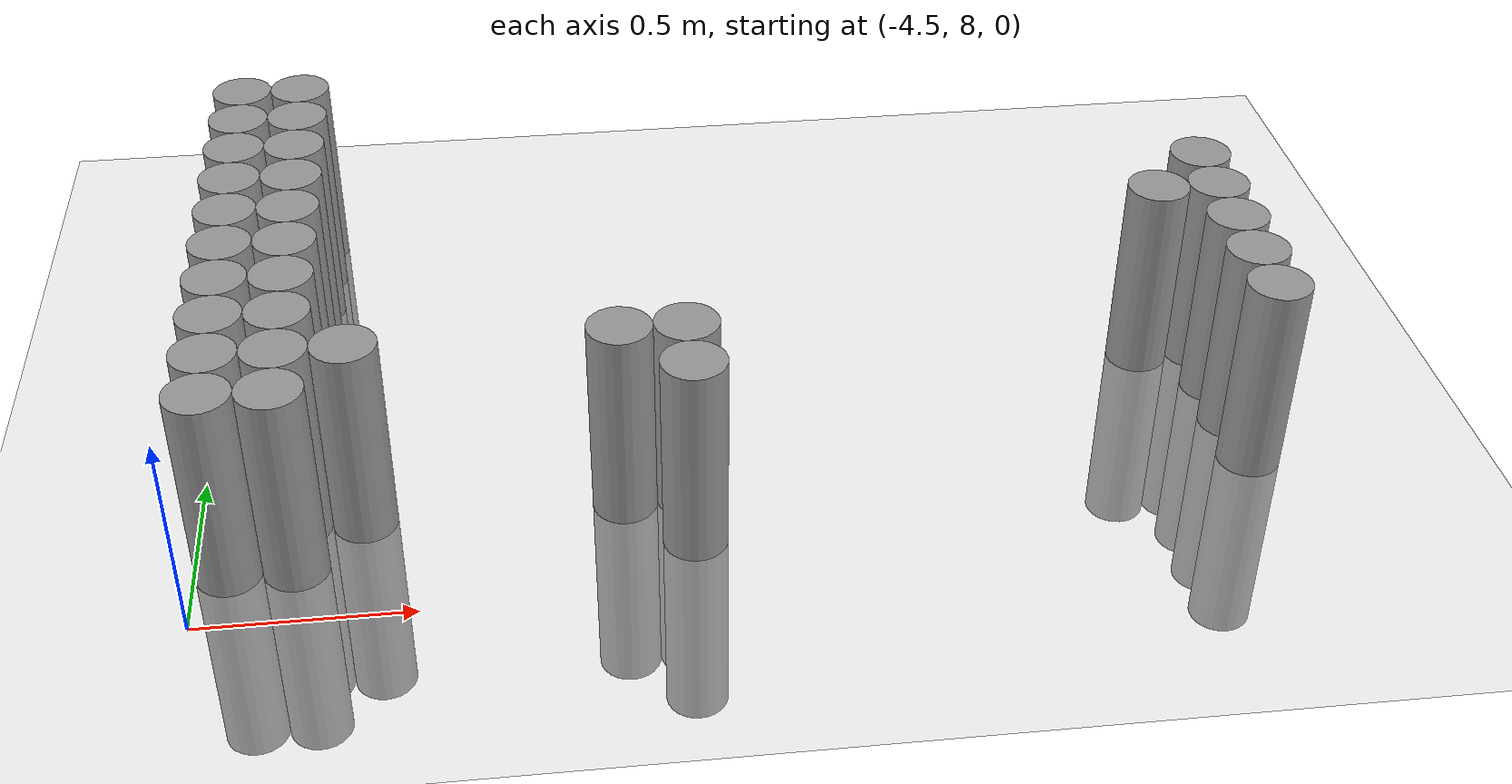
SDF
<sdf version="1.6">
 <world name="default">
  <model name="ground_plane">
   <static>1</static>
   <static>1</static>
   <link name="link">
    <collision name="collision">
     <geometry><plane><normal>0 0 1</normal><size>100 100</size></plane></geometry>
     <surface><friction><ode><mu>100</mu><mu2>50</mu2></ode></friction></surface>
    </collision>
    <visual name="visual">
     <cast_shadows>0</cast_shadows>
     <geometry><plane><normal>0 0 1</normal><size>100 100</size></plane></geometry>
     <material>
      <script><uri>file://media/materials/scripts/gazebo.material</uri><name>Gazebo/Grey</name></script>
     </material>
    </visual>
   </link>
  </model>
  <model name="unit_cylinder_116">
   <static>1</static>
   <pose>-4.425000 8.175000 0.000000 0.000000 0.000000 0.000000</pose>
   <link name="link">
    <inertial>
     <mass>1</mass>
     <inertia><ixx>0.145833</ixx><ixy>0</ixy><ixz>0</ixz><iyy>0.145833</iyy><iyz>0</iyz><izz>0.125</izz></inertia>
    </inertial>
    <collision name="collision">
     <geometry><cylinder><radius>0.075000</radius><length>1</length></cylinder></geometry>
    </collision>
    <visual name="visual">
     <geometry><cylinder><radius>0.075000</radius><length>1</length></cylinder></geometry>
     <material>
      <script><name>Gazebo/Grey</name><uri>file://media/materials/scripts/gazebo.material</uri></script>
     </material>
    </visual>
   </link>
  </model>
  <model name="unit_cylinder_117">
   <static>1</static>
   <pose>-4.425000 8.325000 0.000000 0.000000 0.000000 0.000000</pose>
   <link name="link">
    <inertial>
     <mass>1</mass>
     <inertia><ixx>0.145833</ixx><ixy>0</ixy><ixz>0</ixz><iyy>0.145833</iyy><iyz>0</iyz><izz>0.125</izz></inertia>
    </inertial>
    <collision name="collision">
     <geometry><cylinder><radius>0.075000</radius><length>1</length></cylinder></geometry>
    </collision>
    <visual name="visual">
     <geometry><cylinder><radius>0.075000</radius><length>1</length></cylinder></geometry>
     <material>
      <script><name>Gazebo/Grey</name><uri>file://media/materials/scripts/gazebo.material</uri></script>
     </material>
    </visual>
   </link>
  </model>
  <model name="unit_cylinder_118">
   <static>1</static>
   <pose>-4.425000 8.475000 0.000000 0.000000 0.000000 0.000000</pose>
   <link name="link">
    <inertial>
     <mass>1</mass>
     <inertia><ixx>0.145833</ixx><ixy>0</ixy><ixz>0</ixz><iyy>0.145833</iyy><iyz>0</iyz><izz>0.125</izz></inertia>
    </inertial>
    <collision name="collision">
     <geometry><cylinder><radius>0.075000</radius><length>1</length></cylinder></geometry>
    </collision>
    <visual name="visual">
     <geometry><cylinder><radius>0.075000</radius><length>1</length></cylinder></geometry>
     <material>
      <script><name>Gazebo/Grey</name><uri>file://media/materials/scripts/gazebo.material</uri></script>
     </material>
    </visual>
   </link>
  </model>
  <model name="unit_cylinder_119">
   <static>1</static>
   <pose>-4.425000 8.625000 0.000000 0.000000 0.000000 0.000000</pose>
   <link name="link">
    <inertial>
     <mass>1</mass>
     <inertia><ixx>0.145833</ixx><ixy>0</ixy><ixz>0</ixz><iyy>0.145833</iyy><iyz>0</iyz><izz>0.125</izz></inertia>
    </inertial>
    <collision name="collision">
     <geometry><cylinder><radius>0.075000</radius><length>1</length></cylinder></geometry>
    </collision>
    <visual name="visual">
     <geometry><cylinder><radius>0.075000</radius><length>1</length></cylinder></geometry>
     <material>
      <script><name>Gazebo/Grey</name><uri>file://media/materials/scripts/gazebo.material</uri></script>
     </material>
    </visual>
   </link>
  </model>
  <model name="unit_cylinder_120">
   <static>1</static>
   <pose>-4.425000 8.775000 0.000000 0.000000 0.000000 0.000000</pose>
   <link name="link">
    <inertial>
     <mass>1</mass>
     <inertia><ixx>0.145833</ixx><ixy>0</ixy><ixz>0</ixz><iyy>0.145833</iyy><iyz>0</iyz><izz>0.125</izz></inertia>
    </inertial>
    <collision name="collision">
     <geometry><cylinder><radius>0.075000</radius><length>1</length></cylinder></geometry>
    </collision>
    <visual name="visual">
     <geometry><cylinder><radius>0.075000</radius><length>1</length></cylinder></geometry>
     <material>
      <script><name>Gazebo/Grey</name><uri>file://media/materials/scripts/gazebo.material</uri></script>
     </material>
    </visual>
   </link>
  </model>
  <model name="unit_cylinder_121">
   <static>1</static>
   <pose>-4.425000 8.925000 0.000000 0.000000 0.000000 0.000000</pose>
   <link name="link">
    <inertial>
     <mass>1</mass>
     <inertia><ixx>0.145833</ixx><ixy>0</ixy><ixz>0</ixz><iyy>0.145833</iyy><iyz>0</iyz><izz>0.125</izz></inertia>
    </inertial>
    <collision name="collision">
     <geometry><cylinder><radius>0.075000</radius><length>1</length></cylinder></geometry>
    </collision>
    <visual name="visual">
     <geometry><cylinder><radius>0.075000</radius><length>1</length></cylinder></geometry>
     <material>
      <script><name>Gazebo/Grey</name><uri>file://media/materials/scripts/gazebo.material</uri></script>
     </material>
    </visual>
   </link>
  </model>
  <model name="unit_cylinder_122">
   <static>1</static>
   <pose>-4.425000 9.075000 0.000000 0.000000 0.000000 0.000000</pose>
   <link name="link">
    <inertial>
     <mass>1</mass>
     <inertia><ixx>0.145833</ixx><ixy>0</ixy><ixz>0</ixz><iyy>0.145833</iyy><iyz>0</iyz><izz>0.125</izz></inertia>
    </inertial>
    <collision name="collision">
     <geometry><cylinder><radius>0.075000</radius><length>1</length></cylinder></geometry>
    </collision>
    <visual name="visual">
     <geometry><cylinder><radius>0.075000</radius><length>1</length></cylinder></geometry>
     <material>
      <script><name>Gazebo/Grey</name><uri>file://media/materials/scripts/gazebo.material</uri></script>
     </material>
    </visual>
   </link>
  </model>
  <model name="unit_cylinder_123">
   <static>1</static>
   <pose>-4.425000 9.225000 0.000000 0.000000 0.000000 0.000000</pose>
   <link name="link">
    <inertial>
     <mass>1</mass>
     <inertia><ixx>0.145833</ixx><ixy>0</ixy><ixz>0</ixz><iyy>0.145833</iyy><iyz>0</iyz><izz>0.125</izz></inertia>
    </inertial>
    <collision name="collision">
     <geometry><cylinder><radius>0.075000</radius><length>1</length></cylinder></geometry>
    </collision>
    <visual name="visual">
     <geometry><cylinder><radius>0.075000</radius><length>1</length></cylinder></geometry>
     <material>
      <script><name>Gazebo/Grey</name><uri>file://media/materials/scripts/gazebo.material</uri></script>
     </material>
    </visual>
   </link>
  </model>
  <model name="unit_cylinder_124">
   <static>1</static>
   <pose>-4.425000 9.375000 0.000000 0.000000 0.000000 0.000000</pose>
   <link name="link">
    <inertial>
     <mass>1</mass>
     <inertia><ixx>0.145833</ixx><ixy>0</ixy><ixz>0</ixz><iyy>0.145833</iyy><iyz>0</iyz><izz>0.125</izz></inertia>
    </inertial>
    <collision name="collision">
     <geometry><cylinder><radius>0.075000</radius><length>1</length></cylinder></geometry>
    </collision>
    <visual name="visual">
     <geometry><cylinder><radius>0.075000</radius><length>1</length></cylinder></geometry>
     <material>
      <script><name>Gazebo/Grey</name><uri>file://media/materials/scripts/gazebo.material</uri></script>
     </material>
    </visual>
   </link>
  </model>
  <model name="unit_cylinder_125">
   <static>1</static>
   <pose>-4.425000 9.525000 0.000000 0.000000 0.000000 0.000000</pose>
   <link name="link">
    <inertial>
     <mass>1</mass>
     <inertia><ixx>0.145833</ixx><ixy>0</ixy><ixz>0</ixz><iyy>0.145833</iyy><iyz>0</iyz><izz>0.125</izz></inertia>
    </inertial>
    <collision name="collision">
     <geometry><cylinder><radius>0.075000</radius><length>1</length></cylinder></geometry>
    </collision>
    <visual name="visual">
     <geometry><cylinder><radius>0.075000</radius><length>1</length></cylinder></geometry>
     <material>
      <script><name>Gazebo/Grey</name><uri>file://media/materials/scripts/gazebo.material</uri></script>
     </material>
    </visual>
   </link>
  </model>
  <model name="unit_cylinder_134">
   <static>1</static>
   <pose>-4.275000 8.175000 0.000000 0.000000 0.000000 0.000000</pose>
   <link name="link">
    <inertial>
     <mass>1</mass>
     <inertia><ixx>0.145833</ixx><ixy>0</ixy><ixz>0</ixz><iyy>0.145833</iyy><iyz>0</iyz><izz>0.125</izz></inertia>
    </inertial>
    <collision name="collision">
     <geometry><cylinder><radius>0.075000</radius><length>1</length></cylinder></geometry>
    </collision>
    <visual name="visual">
     <geometry><cylinder><radius>0.075000</radius><length>1</length></cylinder></geometry>
     <material>
      <script><name>Gazebo/Grey</name><uri>file://media/materials/scripts/gazebo.material</uri></script>
     </material>
    </visual>
   </link>
  </model>
  <model name="unit_cylinder_135">
   <static>1</static>
   <pose>-4.275000 8.325000 0.000000 0.000000 0.000000 0.000000</pose>
   <link name="link">
    <inertial>
     <mass>1</mass>
     <inertia><ixx>0.145833</ixx><ixy>0</ixy><ixz>0</ixz><iyy>0.145833</iyy><iyz>0</iyz><izz>0.125</izz></inertia>
    </inertial>
    <collision name="collision">
     <geometry><cylinder><radius>0.075000</radius><length>1</length></cylinder></geometry>
    </collision>
    <visual name="visual">
     <geometry><cylinder><radius>0.075000</radius><length>1</length></cylinder></geometry>
     <material>
      <script><name>Gazebo/Grey</name><uri>file://media/materials/scripts/gazebo.material</uri></script>
     </material>
    </visual>
   </link>
  </model>
  <model name="unit_cylinder_136">
   <static>1</static>
   <pose>-4.275000 8.475000 0.000000 0.000000 0.000000 0.000000</pose>
   <link name="link">
    <inertial>
     <mass>1</mass>
     <inertia><ixx>0.145833</ixx><ixy>0</ixy><ixz>0</ixz><iyy>0.145833</iyy><iyz>0</iyz><izz>0.125</izz></inertia>
    </inertial>
    <collision name="collision">
     <geometry><cylinder><radius>0.075000</radius><length>1</length></cylinder></geometry>
    </collision>
    <visual name="visual">
     <geometry><cylinder><radius>0.075000</radius><length>1</length></cylinder></geometry>
     <material>
      <script><name>Gazebo/Grey</name><uri>file://media/materials/scripts/gazebo.material</uri></script>
     </material>
    </visual>
   </link>
  </model>
  <model name="unit_cylinder_137">
   <static>1</static>
   <pose>-4.275000 8.625000 0.000000 0.000000 0.000000 0.000000</pose>
   <link name="link">
    <inertial>
     <mass>1</mass>
     <inertia><ixx>0.145833</ixx><ixy>0</ixy><ixz>0</ixz><iyy>0.145833</iyy><iyz>0</iyz><izz>0.125</izz></inertia>
    </inertial>
    <collision name="collision">
     <geometry><cylinder><radius>0.075000</radius><length>1</length></cylinder></geometry>
    </collision>
    <visual name="visual">
     <geometry><cylinder><radius>0.075000</radius><length>1</length></cylinder></geometry>
     <material>
      <script><name>Gazebo/Grey</name><uri>file://media/materials/scripts/gazebo.material</uri></script>
     </material>
    </visual>
   </link>
  </model>
  <model name="unit_cylinder_138">
   <static>1</static>
   <pose>-4.275000 8.775000 0.000000 0.000000 0.000000 0.000000</pose>
   <link name="link">
    <inertial>
     <mass>1</mass>
     <inertia><ixx>0.145833</ixx><ixy>0</ixy><ixz>0</ixz><iyy>0.145833</iyy><iyz>0</iyz><izz>0.125</izz></inertia>
    </inertial>
    <collision name="collision">
     <geometry><cylinder><radius>0.075000</radius><length>1</length></cylinder></geometry>
    </collision>
    <visual name="visual">
     <geometry><cylinder><radius>0.075000</radius><length>1</length></cylinder></geometry>
     <material>
      <script><name>Gazebo/Grey</name><uri>file://media/materials/scripts/gazebo.material</uri></script>
     </material>
    </visual>
   </link>
  </model>
  <model name="unit_cylinder_139">
   <static>1</static>
   <pose>-4.275000 8.925000 0.000000 0.000000 0.000000 0.000000</pose>
   <link name="link">
    <inertial>
     <mass>1</mass>
     <inertia><ixx>0.145833</ixx><ixy>0</ixy><ixz>0</ixz><iyy>0.145833</iyy><iyz>0</iyz><izz>0.125</izz></inertia>
    </inertial>
    <collision name="collision">
     <geometry><cylinder><radius>0.075000</radius><length>1</length></cylinder></geometry>
    </collision>
    <visual name="visual">
     <geometry><cylinder><radius>0.075000</radius><length>1</length></cylinder></geometry>
     <material>
      <script><name>Gazebo/Grey</name><uri>file://media/materials/scripts/gazebo.material</uri></script>
     </material>
    </visual>
   </link>
  </model>
  <model name="unit_cylinder_140">
   <static>1</static>
   <pose>-4.275000 9.075000 0.000000 0.000000 0.000000 0.000000</pose>
   <link name="link">
    <inertial>
     <mass>1</mass>
     <inertia><ixx>0.145833</ixx><ixy>0</ixy><ixz>0</ixz><iyy>0.145833</iyy><iyz>0</iyz><izz>0.125</izz></inertia>
    </inertial>
    <collision name="collision">
     <geometry><cylinder><radius>0.075000</radius><length>1</length></cylinder></geometry>
    </collision>
    <visual name="visual">
     <geometry><cylinder><radius>0.075000</radius><length>1</length></cylinder></geometry>
     <material>
      <script><name>Gazebo/Grey</name><uri>file://media/materials/scripts/gazebo.material</uri></script>
     </material>
    </visual>
   </link>
  </model>
  <model name="unit_cylinder_141">
   <static>1</static>
   <pose>-4.275000 9.225000 0.000000 0.000000 0.000000 0.000000</pose>
   <link name="link">
    <inertial>
     <mass>1</mass>
     <inertia><ixx>0.145833</ixx><ixy>0</ixy><ixz>0</ixz><iyy>0.145833</iyy><iyz>0</iyz><izz>0.125</izz></inertia>
    </inertial>
    <collision name="collision">
     <geometry><cylinder><radius>0.075000</radius><length>1</length></cylinder></geometry>
    </collision>
    <visual name="visual">
     <geometry><cylinder><radius>0.075000</radius><length>1</length></cylinder></geometry>
     <material>
      <script><name>Gazebo/Grey</name><uri>file://media/materials/scripts/gazebo.material</uri></script>
     </material>
    </visual>
   </link>
  </model>
  <model name="unit_cylinder_142">
   <static>1</static>
   <pose>-4.275000 9.375000 0.000000 0.000000 0.000000 0.000000</pose>
   <link name="link">
    <inertial>
     <mass>1</mass>
     <inertia><ixx>0.145833</ixx><ixy>0</ixy><ixz>0</ixz><iyy>0.145833</iyy><iyz>0</iyz><izz>0.125</izz></inertia>
    </inertial>
    <collision name="collision">
     <geometry><cylinder><radius>0.075000</radius><length>1</length></cylinder></geometry>
    </collision>
    <visual name="visual">
     <geometry><cylinder><radius>0.075000</radius><length>1</length></cylinder></geometry>
     <material>
      <script><name>Gazebo/Grey</name><uri>file://media/materials/scripts/gazebo.material</uri></script>
     </material>
    </visual>
   </link>
  </model>
  <model name="unit_cylinder_143">
   <static>1</static>
   <pose>-4.275000 9.525000 0.000000 0.000000 0.000000 0.000000</pose>
   <link name="link">
    <inertial>
     <mass>1</mass>
     <inertia><ixx>0.145833</ixx><ixy>0</ixy><ixz>0</ixz><iyy>0.145833</iyy><iyz>0</iyz><izz>0.125</izz></inertia>
    </inertial>
    <collision name="collision">
     <geometry><cylinder><radius>0.075000</radius><length>1</length></cylinder></geometry>
    </collision>
    <visual name="visual">
     <geometry><cylinder><radius>0.075000</radius><length>1</length></cylinder></geometry>
     <material>
      <script><name>Gazebo/Grey</name><uri>file://media/materials/scripts/gazebo.material</uri></script>
     </material>
    </visual>
   </link>
  </model>
  <model name="unit_cylinder_148">
   <static>1</static>
   <pose>-4.125000 8.325000 0.000000 0.000000 0.000000 0.000000</pose>
   <link name="link">
    <inertial>
     <mass>1</mass>
     <inertia><ixx>0.145833</ixx><ixy>0</ixy><ixz>0</ixz><iyy>0.145833</iyy><iyz>0</iyz><izz>0.125</izz></inertia>
    </inertial>
    <collision name="collision">
     <geometry><cylinder><radius>0.075000</radius><length>1</length></cylinder></geometry>
    </collision>
    <visual name="visual">
     <geometry><cylinder><radius>0.075000</radius><length>1</length></cylinder></geometry>
     <material>
      <script><name>Gazebo/Grey</name><uri>file://media/materials/scripts/gazebo.material</uri></script>
     </material>
    </visual>
   </link>
  </model>
  <model name="unit_cylinder_156">
   <static>1</static>
   <pose>-3.525000 8.325000 0.000000 0.000000 0.000000 0.000000</pose>
   <link name="link">
    <inertial>
     <mass>1</mass>
     <inertia><ixx>0.145833</ixx><ixy>0</ixy><ixz>0</ixz><iyy>0.145833</iyy><iyz>0</iyz><izz>0.125</izz></inertia>
    </inertial>
    <collision name="collision">
     <geometry><cylinder><radius>0.075000</radius><length>1</length></cylinder></geometry>
    </collision>
    <visual name="visual">
     <geometry><cylinder><radius>0.075000</radius><length>1</length></cylinder></geometry>
     <material>
      <script><name>Gazebo/Grey</name><uri>file://media/materials/scripts/gazebo.material</uri></script>
     </material>
    </visual>
   </link>
  </model>
  <model name="unit_cylinder_157">
   <static>1</static>
   <pose>-3.375000 8.175000 0.000000 0.000000 0.000000 0.000000</pose>
   <link name="link">
    <inertial>
     <mass>1</mass>
     <inertia><ixx>0.145833</ixx><ixy>0</ixy><ixz>0</ixz><iyy>0.145833</iyy><iyz>0</iyz><izz>0.125</izz></inertia>
    </inertial>
    <collision name="collision">
     <geometry><cylinder><radius>0.075000</radius><length>1</length></cylinder></geometry>
    </collision>
    <visual name="visual">
     <geometry><cylinder><radius>0.075000</radius><length>1</length></cylinder></geometry>
     <material>
      <script><name>Gazebo/Grey</name><uri>file://media/materials/scripts/gazebo.material</uri></script>
     </material>
    </visual>
   </link>
  </model>
  <model name="unit_cylinder_158">
   <static>1</static>
   <pose>-3.375000 8.325000 0.000000 0.000000 0.000000 0.000000</pose>
   <link name="link">
    <inertial>
     <mass>1</mass>
     <inertia><ixx>0.145833</ixx><ixy>0</ixy><ixz>0</ixz><iyy>0.145833</iyy><iyz>0</iyz><izz>0.125</izz></inertia>
    </inertial>
    <collision name="collision">
     <geometry><cylinder><radius>0.075000</radius><length>1</length></cylinder></geometry>
    </collision>
    <visual name="visual">
     <geometry><cylinder><radius>0.075000</radius><length>1</length></cylinder></geometry>
     <material>
      <script><name>Gazebo/Grey</name><uri>file://media/materials/scripts/gazebo.material</uri></script>
     </material>
    </visual>
   </link>
  </model>
  <model name="unit_cylinder_166">
   <static>1</static>
   <pose>-2.175000 8.775000 0.000000 0.000000 0.000000 0.000000</pose>
   <link name="link">
    <inertial>
     <mass>1</mass>
     <inertia><ixx>0.145833</ixx><ixy>0</ixy><ixz>0</ixz><iyy>0.145833</iyy><iyz>0</iyz><izz>0.125</izz></inertia>
    </inertial>
    <collision name="collision">
     <geometry><cylinder><radius>0.075000</radius><length>1</length></cylinder></geometry>
    </collision>
    <visual name="visual">
     <geometry><cylinder><radius>0.075000</radius><length>1</length></cylinder></geometry>
     <material>
      <script><name>Gazebo/Grey</name><uri>file://media/materials/scripts/gazebo.material</uri></script>
     </material>
    </visual>
   </link>
  </model>
  <model name="unit_cylinder_167">
   <static>1</static>
   <pose>-2.025000 8.325000 0.000000 0.000000 0.000000 0.000000</pose>
   <link name="link">
    <inertial>
     <mass>1</mass>
     <inertia><ixx>0.145833</ixx><ixy>0</ixy><ixz>0</ixz><iyy>0.145833</iyy><iyz>0</iyz><izz>0.125</izz></inertia>
    </inertial>
    <collision name="collision">
     <geometry><cylinder><radius>0.075000</radius><length>1</length></cylinder></geometry>
    </collision>
    <visual name="visual">
     <geometry><cylinder><radius>0.075000</radius><length>1</length></cylinder></geometry>
     <material>
      <script><name>Gazebo/Grey</name><uri>file://media/materials/scripts/gazebo.material</uri></script>
     </material>
    </visual>
   </link>
  </model>
  <model name="unit_cylinder_168">
   <static>1</static>
   <pose>-2.025000 8.475000 0.000000 0.000000 0.000000 0.000000</pose>
   <link name="link">
    <inertial>
     <mass>1</mass>
     <inertia><ixx>0.145833</ixx><ixy>0</ixy><ixz>0</ixz><iyy>0.145833</iyy><iyz>0</iyz><izz>0.125</izz></inertia>
    </inertial>
    <collision name="collision">
     <geometry><cylinder><radius>0.075000</radius><length>1</length></cylinder></geometry>
    </collision>
    <visual name="visual">
     <geometry><cylinder><radius>0.075000</radius><length>1</length></cylinder></geometry>
     <material>
      <script><name>Gazebo/Grey</name><uri>file://media/materials/scripts/gazebo.material</uri></script>
     </material>
    </visual>
   </link>
  </model>
  <model name="unit_cylinder_169">
   <static>1</static>
   <pose>-2.025000 8.625000 0.000000 0.000000 0.000000 0.000000</pose>
   <link name="link">
    <inertial>
     <mass>1</mass>
     <inertia><ixx>0.145833</ixx><ixy>0</ixy><ixz>0</ixz><iyy>0.145833</iyy><iyz>0</iyz><izz>0.125</izz></inertia>
    </inertial>
    <collision name="collision">
     <geometry><cylinder><radius>0.075000</radius><length>1</length></cylinder></geometry>
    </collision>
    <visual name="visual">
     <geometry><cylinder><radius>0.075000</radius><length>1</length></cylinder></geometry>
     <material>
      <script><name>Gazebo/Grey</name><uri>file://media/materials/scripts/gazebo.material</uri></script>
     </material>
    </visual>
   </link>
  </model>
  <model name="unit_cylinder_170">
   <static>1</static>
   <pose>-2.025000 8.775000 0.000000 0.000000 0.000000 0.000000</pose>
   <link name="link">
    <inertial>
     <mass>1</mass>
     <inertia><ixx>0.145833</ixx><ixy>0</ixy><ixz>0</ixz><iyy>0.145833</iyy><iyz>0</iyz><izz>0.125</izz></inertia>
    </inertial>
    <collision name="collision">
     <geometry><cylinder><radius>0.075000</radius><length>1</length></cylinder></geometry>
    </collision>
    <visual name="visual">
     <geometry><cylinder><radius>0.075000</radius><length>1</length></cylinder></geometry>
     <material>
      <script><name>Gazebo/Grey</name><uri>file://media/materials/scripts/gazebo.material</uri></script>
     </material>
    </visual>
   </link>
  </model>
  <model name="unit_cylinder_171">
   <static>1</static>
   <pose>-2.025000 8.925000 0.000000 0.000000 0.000000 0.000000</pose>
   <link name="link">
    <inertial>
     <mass>1</mass>
     <inertia><ixx>0.145833</ixx><ixy>0</ixy><ixz>0</ixz><iyy>0.145833</iyy><iyz>0</iyz><izz>0.125</izz></inertia>
    </inertial>
    <collision name="collision">
     <geometry><cylinder><radius>0.075000</radius><length>1</length></cylinder></geometry>
    </collision>
    <visual name="visual">
     <geometry><cylinder><radius>0.075000</radius><length>1</length></cylinder></geometry>
     <material>
      <script><name>Gazebo/Grey</name><uri>file://media/materials/scripts/gazebo.material</uri></script>
     </material>
    </visual>
   </link>
  </model>
 </world>
</sdf>
